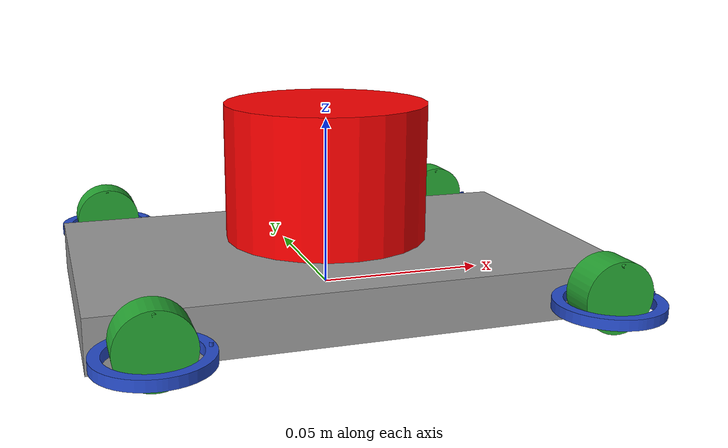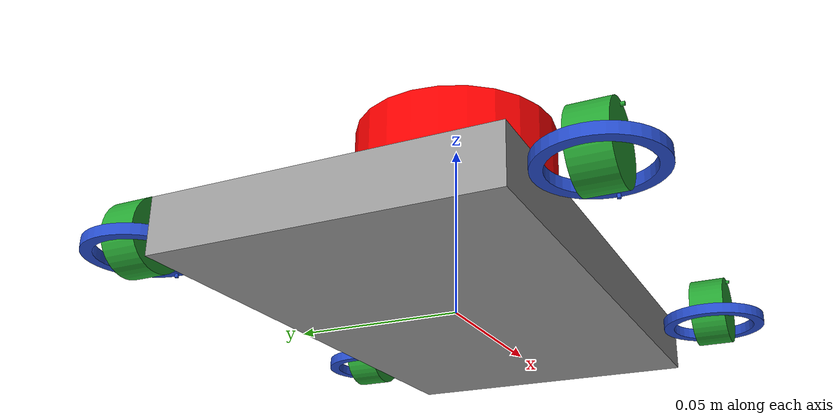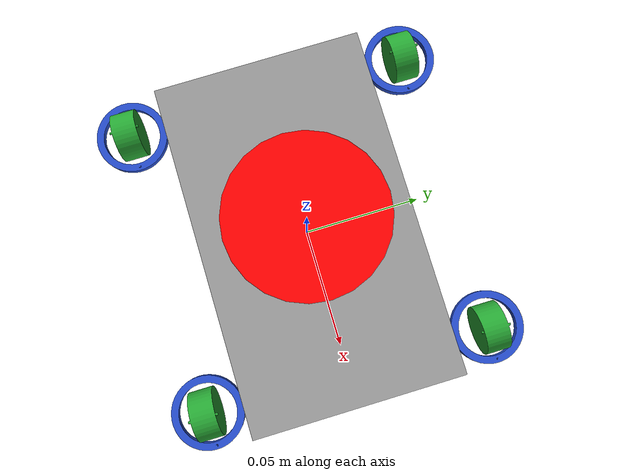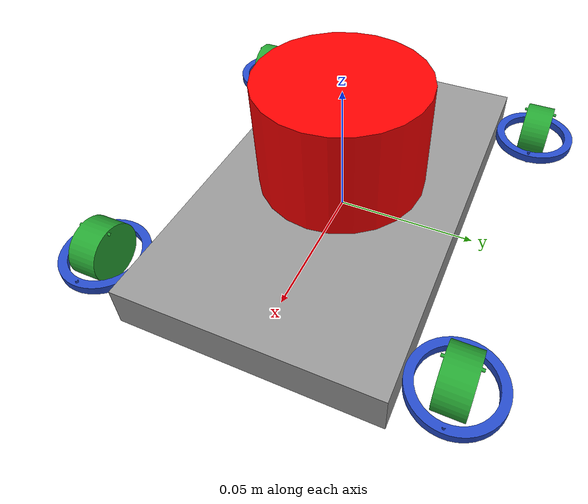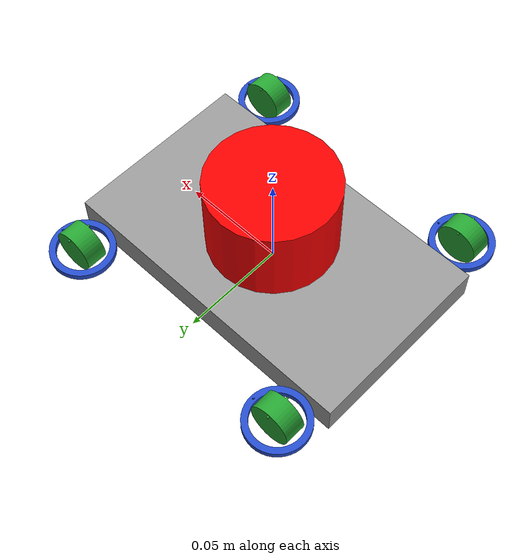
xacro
<?xml version="1.0"?>
<robot name="swerve_drive_robot" xmlns:xacro="http://ros.org/wiki/xacro">

    <xacro:include filename="$(find swerve_description)/urdf/color_palette.xacro"/>
    <xacro:include filename="$(find swerve_description)/urdf/base/base.urdf.xacro"/>
    <xacro:include filename="$(find swerve_description)/urdf/swerve_drive/swerve_drive.urdf.xacro"/>
    <xacro:include filename="$(find swerve_description)/urdf/swerve_drive/wheel.transmission.xacro"/>
	<xacro:include filename="$(find swerve_description)/urdf/swerve_drive/lidar.xacro"/>

    <link name="base_footprint"/>

    <xacro:base_v0 link_name="base_link" parent="base_footprint">
		<origin xyz="0 0 0.005"/>
	</xacro:base_v0>

	<!-- base_height 0.15 base_length 0.09 steering_radius 0.015-->
	<!-- Front Right Swerve Drive-->
	<xacro:swerve_drive_v0 prefix="front_right" parent="base_link">
		<origin xyz="0.06 -0.06 0" />
		<!--steering-->
		<axis xyz="0 0 1"/>
		<!--wheel-->
		<axis xyz="0 1 0"/>
	</xacro:swerve_drive_v0>

	<!-- Front Left Swerve Drive-->
	<xacro:swerve_drive_v0 prefix="front_left" parent="base_link">
		<origin xyz="0.06 0.06 0" />
		<!--steering-->
		<axis xyz="0 0 1"/>
		<!--wheel-->
		<axis xyz="0 1 0"/>
	</xacro:swerve_drive_v0>

	<!-- Rear Right Swerve Drive-->
	<xacro:swerve_drive_v0 prefix="rear_right" parent="base_link">
		<origin xyz="-0.06 -0.06 0" />
		<!--steering-->
		<axis xyz="0 0 1"/>
		<!--wheel-->
		<axis xyz="0 1 0"/>
	</xacro:swerve_drive_v0>

	<!-- Rear Left Swerve Drive-->
	<xacro:swerve_drive_v0 prefix="rear_left" parent="base_link">
		<origin xyz="-0.06 0.06 0"/>
		<!--steering-->
		<axis xyz="0 0 1"/>
		<!--wheel-->
		<axis xyz="0 1 0"/>
	</xacro:swerve_drive_v0>

	<!-- ===============  Transmission =============== -->
	<xacro:arg name="load_trans_s" default="true" />
	<xacro:arg name="load_trans_w" default="true" />

	<xacro:if value="$(arg load_trans_s)">
		<xacro:steering_trans_v0 prefix="front_right" />
		<xacro:steering_trans_v0 prefix="front_left" />
		<xacro:steering_trans_v0 prefix="rear_right" />
		<xacro:steering_trans_v0 prefix="rear_left" />
	</xacro:if>

	<xacro:if value="$(arg load_trans_w)">
		<xacro:wheel_trans_v0 prefix="front_right" />
		<xacro:wheel_trans_v0 prefix="front_left" />
		<xacro:wheel_trans_v0 prefix="rear_right" />
		<xacro:wheel_trans_v0 prefix="rear_left" />
	</xacro:if>
		<!-- =============== Gazebo =============== -->
	<!-- Namespace -->
	<gazebo>
        <plugin filename="libgazebo_ros2_control.so" name="gazebo_ros2_control">
            <parameters>$(find swerve_description)/config/controller_steering.yaml</parameters>
            <parameters>$(find swerve_description)/config/controller_wheel.yaml</parameters>
        </plugin>
    </gazebo>

	<xacro:base_gazebo_v0 link_name="base_link"/>

	<xacro:swerve_drive_gazebo_v0 prefix="front_right"/>
	<xacro:swerve_drive_gazebo_v0 prefix="front_left"/>
	<xacro:swerve_drive_gazebo_v0 prefix="rear_right"/>
	<xacro:swerve_drive_gazebo_v0 prefix="rear_left"/>

</robot>

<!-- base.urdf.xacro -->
<robot xmlns:xacro="http://ros.org/wiki/xacro">

	<xacro:include filename="$(find swerve_description)/urdf/common.xacro"/>
	<xacro:include filename="$(find swerve_description)/urdf/base/base.gazebo.xacro"/>

	<xacro:property name="base_height" value="0.15"/>
    <xacro:property name="base_width" value="0.09"/>
    <xacro:property name="base_depth" value="0.015"/>
    <xacro:property name="base_mass" value="0.5"/>

	<xacro:macro name="base_v0" params="link_name parent *joint_origin">
		<joint name="${link_name}_joint" type="fixed">
			<xacro:insert_block name="joint_origin"/>
			<parent link="${parent}"/>
			<child link="${link_name}"/>
		</joint>

		<link name="${link_name}">
			<visual>
				<geometry>
					<box size="0.15 0.09 0.015"/>
				</geometry>
				<origin xyz="0 0 0" />
				<material name="gray"/>
			</visual>
			<collision>
				<geometry>
					<box size="${base_height} ${base_width} ${base_depth}"/>
				</geometry>
				<origin xyz="0 0 ${base_depth/2}" />
			</collision>
			<inertial>
				<origin xyz="0 0 ${base_depth/2}"/>
				<xacro:box_inertial mass="${base_mass}" height="${base_height}" width="${base_width}" depth="${base_depth}"/>
			</inertial>
		</link>
	</xacro:macro>

</robot>

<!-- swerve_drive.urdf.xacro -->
<robot xmlns:xacro="http://ros.org/wiki/xacro">

    <xacro:include filename="$(find swerve_description)/urdf/common.xacro"/>
    <xacro:include filename="$(find swerve_description)/urdf/swerve_drive/steering.transmission.xacro"/>
    <xacro:include filename="$(find swerve_description)/urdf/swerve_drive/wheel.transmission.xacro"/>
    <xacro:include filename="$(find swerve_description)/urdf/swerve_drive/swerve_drive.gazebo.xacro"/>

    <xacro:property name="steering_radius" value="0.015"/>
    <xacro:property name="steering_length" value="0.003"/>
    <xacro:property name="steering_mass" value="0.01"/>

    <xacro:property name="wheel_radius" value="0.01"/>
    <xacro:property name="wheel_length" value="0.01"/>
    <xacro:property name="wheel_mass" value="0.05"/>

    <xacro:macro name="swerve_drive_v0" params="prefix parent *joint_origin *joint_axis_s *joint_axis_w">
        <!-- steering -->
        <joint name="${prefix}_steering_joint" type="revolute">
            <xacro:insert_block name="joint_origin"/>
            <parent link="${parent}"/>
            <child link="${prefix}_steering_link"/>
            <xacro:insert_block name="joint_axis_s"/>
            <limit lower="-${M_PI}" upper="${M_PI}" effort="10" velocity="10"/>
        </joint>

        <link name="${prefix}_steering_link">
            <visual>
                <geometry>
                    <mesh filename="package://swerve_description/meshes/dae/steering.dae"/>
                </geometry>
                <origin xyz="0 0 0" />
                <material name="blue"/>
            </visual>
            <collision>
                <geometry>
                    <cylinder radius="${steering_radius}" length="${steering_length}"/>
                </geometry>
                <origin xyz="0 0 ${steering_length/2}"/>
            </collision>
            <inertial>
                <origin xyz="0 0 ${steering_length/2}"/>
                <xacro:cylinder_inertial mass="${steering_mass}" radius="${steering_radius}" length="${steering_length}"/>
            </inertial>
        </link>

        <!-- wheel -->
        <joint name="${prefix}_wheel_joint" type="continuous">
            <origin xyz="0 0 0.005"/>
            <parent link="${prefix}_steering_link"/>
            <child link="${prefix}_wheel_link"/>
            <xacro:insert_block name="joint_axis_w"/>
            <limit velocity="15.0" effort="1.0" />
            <dynamics damping="0"/>
        </joint>

        <link name="${prefix}_wheel_link">
            <visual>
                <geometry>
                    <mesh filename="package://swerve_description/meshes/dae/wheel.dae"/>
                </geometry>
                <origin xyz="0 -${wheel_length/2} 0"/>
                <material name="green"/>
            </visual>
            <collision>
                <origin xyz="0 0 0" rpy="${M_PI/2} 0 0"/>
                <geometry>
                    <cylinder radius="${wheel_radius}" length="${wheel_length}"/>
                </geometry>
            </collision>
            <inertial>
                <origin xyz="0 0 0" rpy="${M_PI/2} 0 0"/>
                <xacro:cylinder_inertial mass="${wheel_mass}" radius="${wheel_radius}" length="${wheel_length}"/>
            </inertial>
        </link>
    </xacro:macro>

</robot>

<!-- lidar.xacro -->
<robot xmlns:xacro="http://www.ros.org/wiki/xacro">

    <joint name="laser_joint" type="fixed">
        <parent link="base_link"/>
        <child link="laser_frame"/>
        <origin xyz="0 0 0.03" rpy="0 0 0"/>
    </joint>

    <link name="laser_frame">
        <visual>
            <geometry>
                <cylinder radius="0.03" length="0.04"/>
            </geometry>
            <material name="lidar_red">
                <color rgba="1 0 0 1"/>
            </material>
        </visual>
        <collision>
            <geometry>
                <cylinder radius="0.03" length="0.04"/>
            </geometry>
        </collision>
        <inertial>
            <mass value="0.1"/>
            <inertia ixx="4.3e-5" ixy="0" ixz="0"
                     iyy="4.3e-5" iyz="0"
                     izz="4.5e-5"/>
        </inertial>
    </link>

    <gazebo reference="laser_frame">
        <material>Gazebo/Red</material>

        <sensor name="laser" type="ray">
            <pose>0 0 0 0 0 0</pose>
            <always_on>true</always_on>
            <visualize>true</visualize>
            <update_rate>10</update_rate>
            <ray>
                <scan>
                    <horizontal>
                        <samples>360</samples>
                        <min_angle>-3.14159</min_angle>
                        <max_angle>3.14159</max_angle>
                    </horizontal>
                </scan>
                <range>
                    <min>0.12</min>
                    <max>8.0</max>
                </range>
            </ray>
            <plugin name="laser_controller" filename="libgazebo_ros_ray_sensor.so">
                <ros>
                    <remapping>~/out:=scan</remapping>
                </ros>
                <output_type>sensor_msgs/LaserScan</output_type>
                <frame_name>laser_frame</frame_name>
            </plugin>
        </sensor>
    </gazebo>

</robot>
